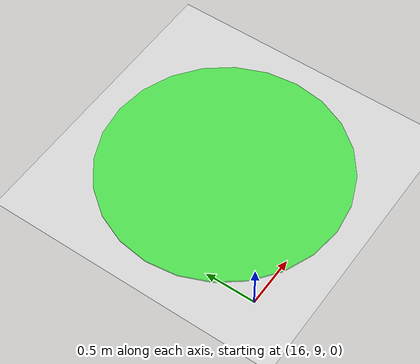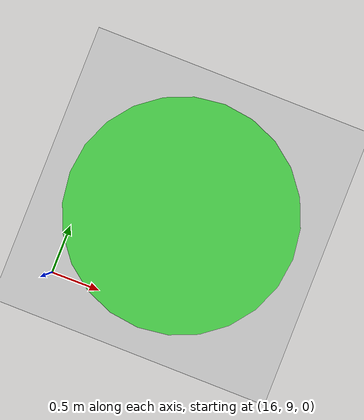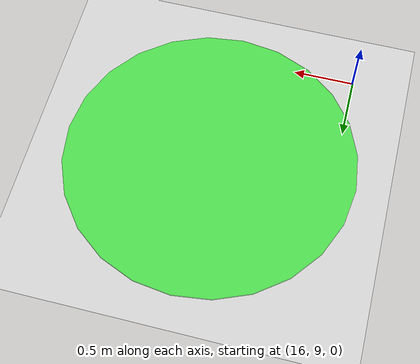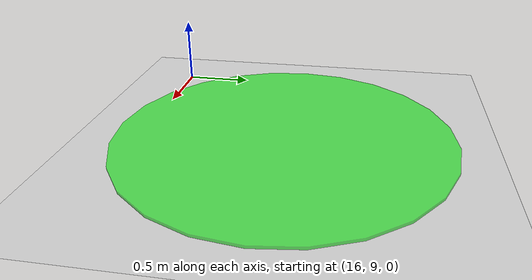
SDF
<?xml version="1.0" ?>
<!--
  coordination_empty.world
  Minimal world for swarm-coordination baseline experiments:
  - No internal obstacles
  - No boundary walls
  - Goal marker only
-->
<sdf version="1.7">
  <world name="coordination_empty">
    <gravity>0 0 -9.8</gravity>
    <physics type="ode">
      <real_time_update_rate>1000</real_time_update_rate>
      <max_step_size>0.001</max_step_size>
      <ode>
        <solver>
          <type>quick</type>
          <iters>150</iters>
        </solver>
      </ode>
    </physics>

    <scene>
      <ambient>0.45 0.45 0.45 1</ambient>
      <background>0.72 0.72 0.72 1</background>
      <shadows>true</shadows>
    </scene>

    <include>
      <uri>model://ground_plane</uri>
    </include>
    <include>
      <uri>model://sun</uri>
    </include>

    <!-- Goal zone marker at (17, 10) -->
    <model name="goal_marker">
      <static>true</static>
      <pose>17 10 0.01 0 0 0</pose>
      <link name="link">
        <visual name="v">
          <geometry>
            <cylinder>
              <radius>1.2</radius>
              <length>0.02</length>
            </cylinder>
          </geometry>
          <material>
            <ambient>0 0.9 0 0.6</ambient>
            <diffuse>0 0.9 0 0.6</diffuse>
            <emissive>0 0.4 0 0</emissive>
          </material>
        </visual>
      </link>
    </model>
  </world>
</sdf>
